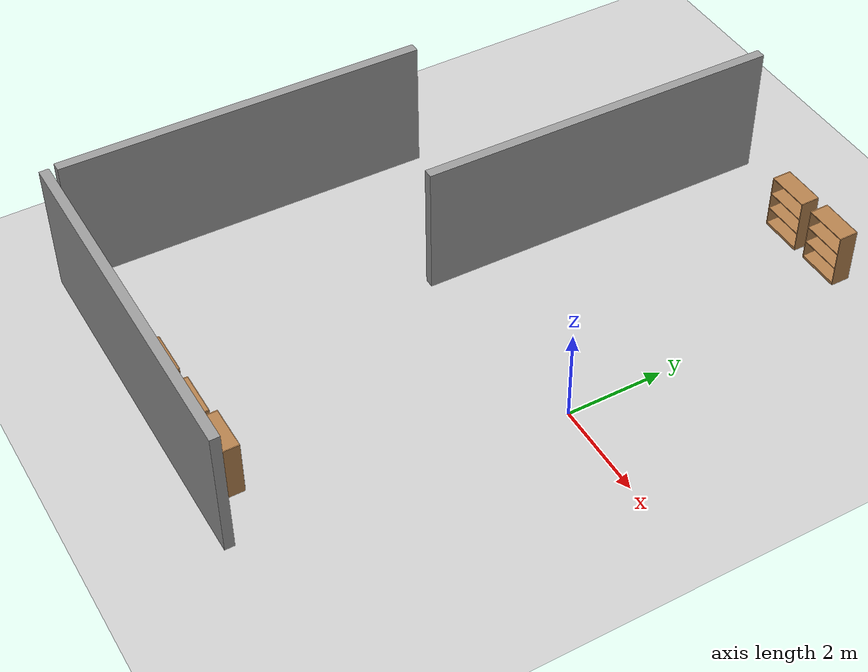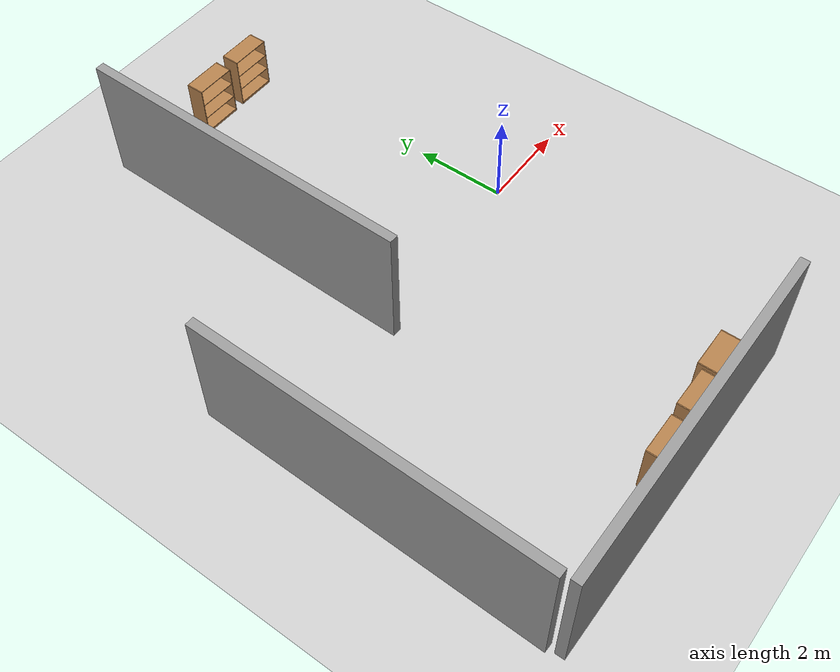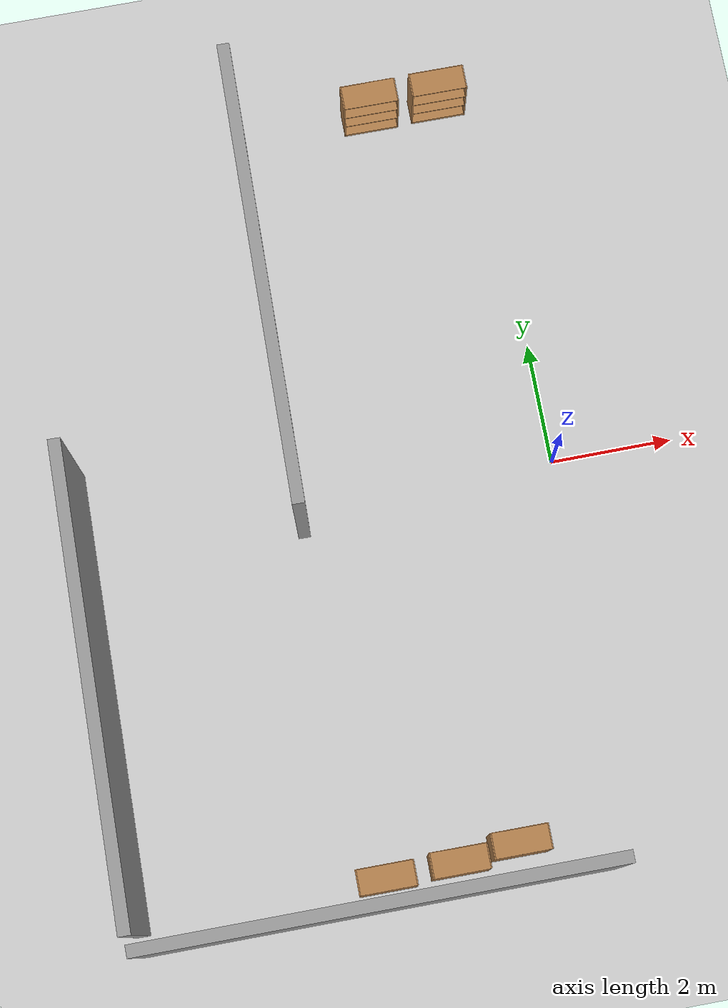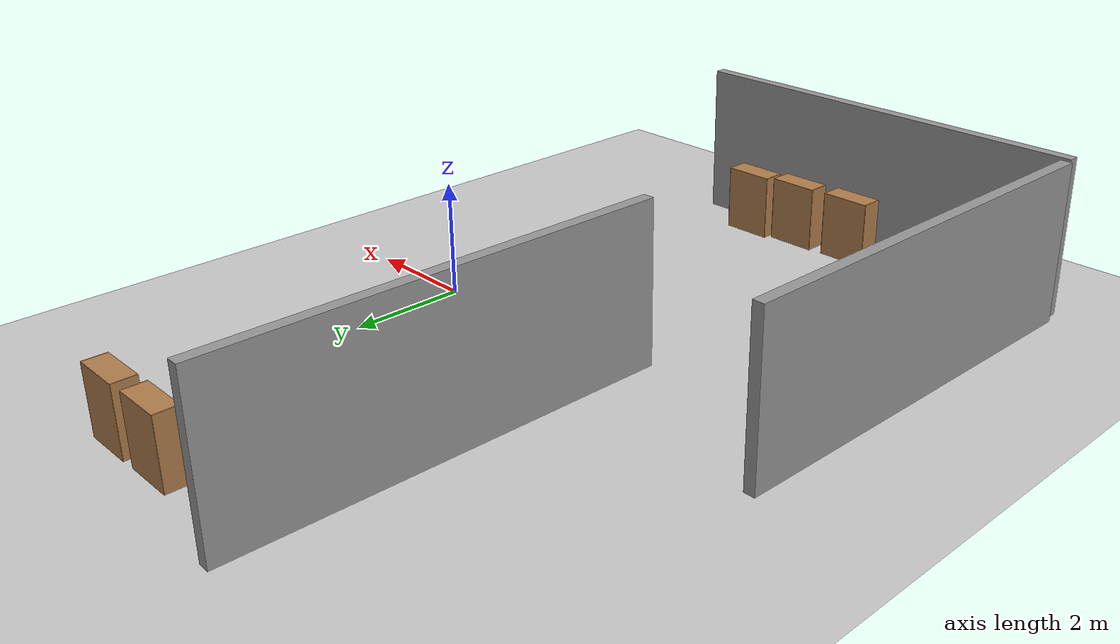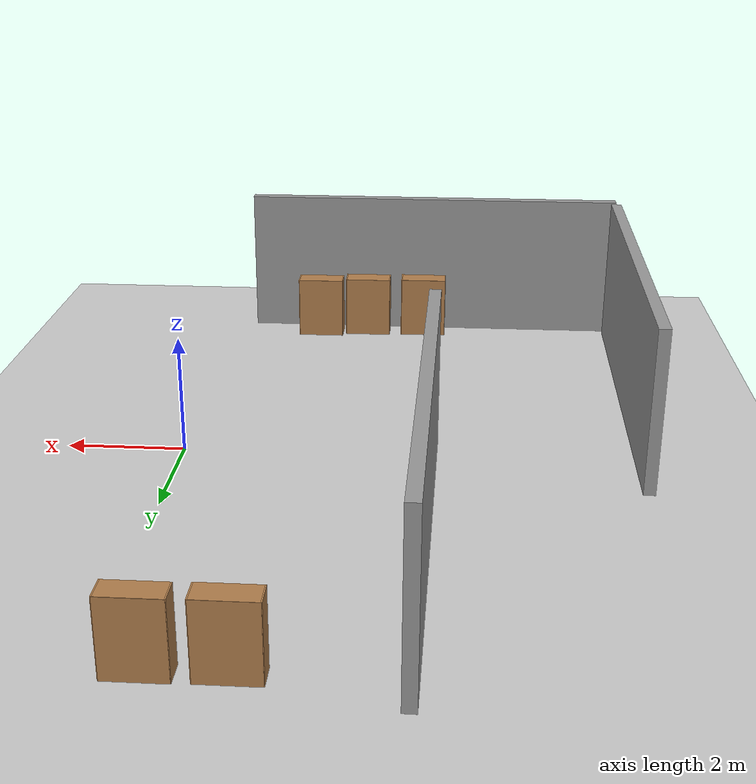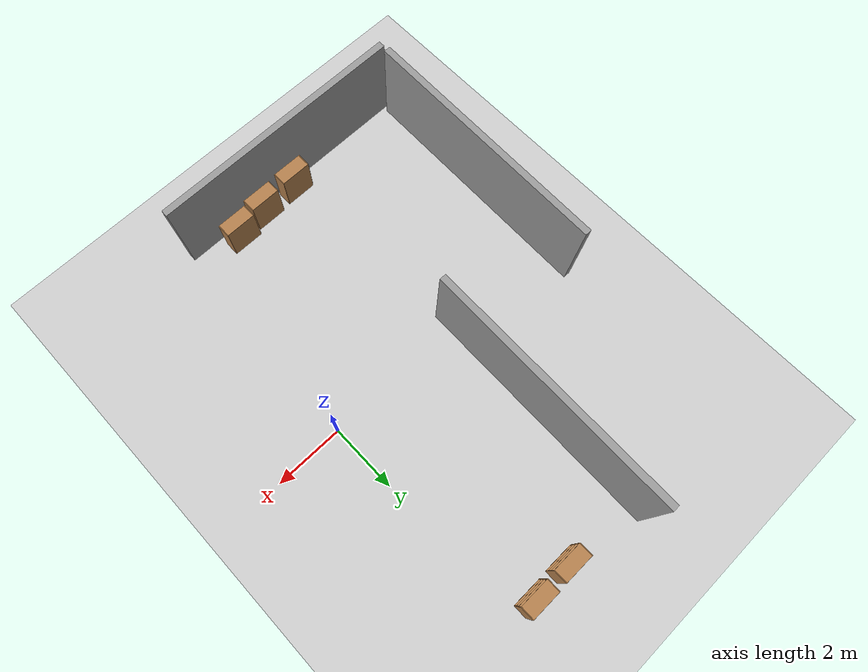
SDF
<sdf version="1.7">
 <world name="default">
  <model name="ground_plane">
   <static>1</static>
   <link name="link">
    <collision name="collision">
     <geometry><plane><normal>0 0 1</normal><size>100 100</size></plane></geometry>
     <surface><friction><ode><mu>100</mu><mu2>50</mu2></ode></friction></surface>
    </collision>
    <visual name="visual">
     <cast_shadows>0</cast_shadows>
     <geometry><plane><normal>0 0 1</normal><size>100 100</size></plane></geometry>
     <material>
      <script><uri>file://media/materials/scripts/gazebo.material</uri><name>Gazebo/Grey</name></script>
     </material>
    </visual>
   </link>
  </model>
  <model name="grey_wall_0">
   <static>1</static>
   <link name="link">
    <pose>0 0 1.4 0 -0 0</pose>
    <collision name="collision"><geometry><box><size>7.5 0.2 2.8</size></box></geometry></collision>
    <visual name="visual">
     <cast_shadows>0</cast_shadows>
     <geometry><box><size>7.5 0.2 2.8</size></box></geometry>
     <material>
      <script>
       <uri>model://grey_wall/materials/scripts</uri>
       <uri>model://grey_wall/materials/textures</uri>
       <name>vrc/grey_wall</name>
      </script>
     </material>
    </visual>
   </link>
   <pose>-4.14677 3.24091 0 0 0 -1.58679</pose>
  </model>
  <model name="grey_wall_1">
   <static>1</static>
   <link name="link">
    <pose>0 0 1.4 0 -0 0</pose>
    <collision name="collision"><geometry><box><size>7.5 0.2 2.8</size></box></geometry></collision>
    <visual name="visual">
     <cast_shadows>0</cast_shadows>
     <geometry><box><size>7.5 0.2 2.8</size></box></geometry>
     <material>
      <script>
       <uri>model://grey_wall/materials/scripts</uri>
       <uri>model://grey_wall/materials/textures</uri>
       <name>vrc/grey_wall</name>
      </script>
     </material>
    </visual>
   </link>
   <pose>-7.74047 -2.58996 0 0 -0 1.55456</pose>
  </model>
  <model name="grey_wall_2">
   <static>1</static>
   <link name="link">
    <pose>0 0 1.4 0 -0 0</pose>
    <collision name="collision"><geometry><box><size>7.5 0.2 2.8</size></box></geometry></collision>
    <visual name="visual">
     <cast_shadows>0</cast_shadows>
     <geometry><box><size>7.5 0.2 2.8</size></box></geometry>
     <material>
      <script>
       <uri>model://grey_wall/materials/scripts</uri>
       <uri>model://grey_wall/materials/textures</uri>
       <name>vrc/grey_wall</name>
      </script>
     </material>
    </visual>
   </link>
   <pose>-4.06497 -6.56277 0 0 -0 0</pose>
  </model>
  <model name="bookshelf">
   <static>1</static>
   <link name="link">
    <inertial><mass>1</mass></inertial>
    <collision name="back">
     <pose>0 0.005 0.6 0 -0 0</pose>
     <geometry><box><size>0.9 0.01 1.2</size></box></geometry>
    </collision>
    <visual name="visual1">
     <pose>0 0.005 0.6 0 -0 0</pose>
     <geometry><box><size>0.9 0.01 1.2</size></box></geometry>
     <material>
      <script><uri>file://media/materials/scripts/gazebo.material</uri><name>Gazebo/Wood</name></script>
     </material>
    </visual>
    <collision name="left_side">
     <pose>0.45 -0.195 0.6 0 -0 0</pose>
     <geometry><box><size>0.02 0.4 1.2</size></box></geometry>
    </collision>
    <visual name="visual2">
     <pose>0.45 -0.195 0.6 0 -0 0</pose>
     <geometry><box><size>0.02 0.4 1.2</size></box></geometry>
     <material>
      <script><uri>file://media/materials/scripts/gazebo.material</uri><name>Gazebo/Wood</name></script>
     </material>
    </visual>
    <collision name="right_side">
     <pose>-0.45 -0.195 0.6 0 -0 0</pose>
     <geometry><box><size>0.02 0.4 1.2</size></box></geometry>
    </collision>
    <visual name="visual3">
     <pose>-0.45 -0.195 0.6 0 -0 0</pose>
     <geometry><box><size>0.02 0.4 1.2</size></box></geometry>
     <material>
      <script><uri>file://media/materials/scripts/gazebo.material</uri><name>Gazebo/Wood</name></script>
     </material>
    </visual>
    <collision name="bottom">
     <pose>0 -0.195 0.03 0 -0 0</pose>
     <geometry><box><size>0.88 0.4 0.06</size></box></geometry>
    </collision>
    <visual name="visual4">
     <pose>0 -0.195 0.03 0 -0 0</pose>
     <geometry><box><size>0.88 0.4 0.06</size></box></geometry>
     <material>
      <script><uri>file://media/materials/scripts/gazebo.material</uri><name>Gazebo/Wood</name></script>
     </material>
    </visual>
    <collision name="top">
     <pose>0 -0.195 1.19 0 -0 0</pose>
     <geometry><box><size>0.88 0.4 0.02</size></box></geometry>
    </collision>
    <visual name="visual5">
     <pose>0 -0.195 1.19 0 -0 0</pose>
     <geometry><box><size>0.88 0.4 0.02</size></box></geometry>
     <material>
      <script><uri>file://media/materials/scripts/gazebo.material</uri><name>Gazebo/Wood</name></script>
     </material>
    </visual>
    <collision name="low_shelf">
     <pose>0 -0.195 0.43 0 -0 0</pose>
     <geometry><box><size>0.88 0.4 0.02</size></box></geometry>
    </collision>
    <visual name="visual6">
     <pose>0 -0.195 0.43 0 -0 0</pose>
     <geometry><box><size>0.88 0.4 0.02</size></box></geometry>
     <material>
      <script><uri>file://media/materials/scripts/gazebo.material</uri><name>Gazebo/Wood</name></script>
     </material>
    </visual>
    <collision name="high_shelf">
     <pose>0 -0.195 0.8 0 -0 0</pose>
     <geometry><box><size>0.88 0.4 0.02</size></box></geometry>
    </collision>
    <visual name="visual7">
     <pose>0 -0.195 0.8 0 -0 0</pose>
     <geometry><box><size>0.88 0.4 0.02</size></box></geometry>
     <material>
      <script><uri>file://media/materials/scripts/gazebo.material</uri><name>Gazebo/Wood</name></script>
     </material>
    </visual>
   </link>
   <pose>-0.709223 6.60823 0 0 -0 0</pose>
  </model>
  <model name="bookshelf_3">
   <static>1</static>
   <link name="link">
    <inertial><mass>1</mass></inertial>
    <collision name="back">
     <pose>0 0.005 0.6 0 -0 0</pose>
     <geometry><box><size>0.9 0.01 1.2</size></box></geometry>
    </collision>
    <visual name="visual1">
     <pose>0 0.005 0.6 0 -0 0</pose>
     <geometry><box><size>0.9 0.01 1.2</size></box></geometry>
     <material>
      <script><uri>file://media/materials/scripts/gazebo.material</uri><name>Gazebo/Wood</name></script>
     </material>
    </visual>
    <collision name="left_side">
     <pose>0.45 -0.195 0.6 0 -0 0</pose>
     <geometry><box><size>0.02 0.4 1.2</size></box></geometry>
    </collision>
    <visual name="visual2">
     <pose>0.45 -0.195 0.6 0 -0 0</pose>
     <geometry><box><size>0.02 0.4 1.2</size></box></geometry>
     <material>
      <script><uri>file://media/materials/scripts/gazebo.material</uri><name>Gazebo/Wood</name></script>
     </material>
    </visual>
    <collision name="right_side">
     <pose>-0.45 -0.195 0.6 0 -0 0</pose>
     <geometry><box><size>0.02 0.4 1.2</size></box></geometry>
    </collision>
    <visual name="visual3">
     <pose>-0.45 -0.195 0.6 0 -0 0</pose>
     <geometry><box><size>0.02 0.4 1.2</size></box></geometry>
     <material>
      <script><uri>file://media/materials/scripts/gazebo.material</uri><name>Gazebo/Wood</name></script>
     </material>
    </visual>
    <collision name="bottom">
     <pose>0 -0.195 0.03 0 -0 0</pose>
     <geometry><box><size>0.88 0.4 0.06</size></box></geometry>
    </collision>
    <visual name="visual4">
     <pose>0 -0.195 0.03 0 -0 0</pose>
     <geometry><box><size>0.88 0.4 0.06</size></box></geometry>
     <material>
      <script><uri>file://media/materials/scripts/gazebo.material</uri><name>Gazebo/Wood</name></script>
     </material>
    </visual>
    <collision name="top">
     <pose>0 -0.195 1.19 0 -0 0</pose>
     <geometry><box><size>0.88 0.4 0.02</size></box></geometry>
    </collision>
    <visual name="visual5">
     <pose>0 -0.195 1.19 0 -0 0</pose>
     <geometry><box><size>0.88 0.4 0.02</size></box></geometry>
     <material>
      <script><uri>file://media/materials/scripts/gazebo.material</uri><name>Gazebo/Wood</name></script>
     </material>
    </visual>
    <collision name="low_shelf">
     <pose>0 -0.195 0.43 0 -0 0</pose>
     <geometry><box><size>0.88 0.4 0.02</size></box></geometry>
    </collision>
    <visual name="visual6">
     <pose>0 -0.195 0.43 0 -0 0</pose>
     <geometry><box><size>0.88 0.4 0.02</size></box></geometry>
     <material>
      <script><uri>file://media/materials/scripts/gazebo.material</uri><name>Gazebo/Wood</name></script>
     </material>
    </visual>
    <collision name="high_shelf">
     <pose>0 -0.195 0.8 0 -0 0</pose>
     <geometry><box><size>0.88 0.4 0.02</size></box></geometry>
    </collision>
    <visual name="visual7">
     <pose>0 -0.195 0.8 0 -0 0</pose>
     <geometry><box><size>0.88 0.4 0.02</size></box></geometry>
     <material>
      <script><uri>file://media/materials/scripts/gazebo.material</uri><name>Gazebo/Wood</name></script>
     </material>
    </visual>
   </link>
   <pose>-2.74927 -5.92509 0 0 -0 0</pose>
  </model>
  <model name="bookshelf_4">
   <static>1</static>
   <link name="link">
    <inertial><mass>1</mass></inertial>
    <collision name="back">
     <pose>0 0.005 0.6 0 -0 0</pose>
     <geometry><box><size>0.9 0.01 1.2</size></box></geometry>
    </collision>
    <visual name="visual1">
     <pose>0 0.005 0.6 0 -0 0</pose>
     <geometry><box><size>0.9 0.01 1.2</size></box></geometry>
     <material>
      <script><uri>file://media/materials/scripts/gazebo.material</uri><name>Gazebo/Wood</name></script>
     </material>
    </visual>
    <collision name="left_side">
     <pose>0.45 -0.195 0.6 0 -0 0</pose>
     <geometry><box><size>0.02 0.4 1.2</size></box></geometry>
    </collision>
    <visual name="visual2">
     <pose>0.45 -0.195 0.6 0 -0 0</pose>
     <geometry><box><size>0.02 0.4 1.2</size></box></geometry>
     <material>
      <script><uri>file://media/materials/scripts/gazebo.material</uri><name>Gazebo/Wood</name></script>
     </material>
    </visual>
    <collision name="right_side">
     <pose>-0.45 -0.195 0.6 0 -0 0</pose>
     <geometry><box><size>0.02 0.4 1.2</size></box></geometry>
    </collision>
    <visual name="visual3">
     <pose>-0.45 -0.195 0.6 0 -0 0</pose>
     <geometry><box><size>0.02 0.4 1.2</size></box></geometry>
     <material>
      <script><uri>file://media/materials/scripts/gazebo.material</uri><name>Gazebo/Wood</name></script>
     </material>
    </visual>
    <collision name="bottom">
     <pose>0 -0.195 0.03 0 -0 0</pose>
     <geometry><box><size>0.88 0.4 0.06</size></box></geometry>
    </collision>
    <visual name="visual4">
     <pose>0 -0.195 0.03 0 -0 0</pose>
     <geometry><box><size>0.88 0.4 0.06</size></box></geometry>
     <material>
      <script><uri>file://media/materials/scripts/gazebo.material</uri><name>Gazebo/Wood</name></script>
     </material>
    </visual>
    <collision name="top">
     <pose>0 -0.195 1.19 0 -0 0</pose>
     <geometry><box><size>0.88 0.4 0.02</size></box></geometry>
    </collision>
    <visual name="visual5">
     <pose>0 -0.195 1.19 0 -0 0</pose>
     <geometry><box><size>0.88 0.4 0.02</size></box></geometry>
     <material>
      <script><uri>file://media/materials/scripts/gazebo.material</uri><name>Gazebo/Wood</name></script>
     </material>
    </visual>
    <collision name="low_shelf">
     <pose>0 -0.195 0.43 0 -0 0</pose>
     <geometry><box><size>0.88 0.4 0.02</size></box></geometry>
    </collision>
    <visual name="visual6">
     <pose>0 -0.195 0.43 0 -0 0</pose>
     <geometry><box><size>0.88 0.4 0.02</size></box></geometry>
     <material>
      <script><uri>file://media/materials/scripts/gazebo.material</uri><name>Gazebo/Wood</name></script>
     </material>
    </visual>
    <collision name="high_shelf">
     <pose>0 -0.195 0.8 0 -0 0</pose>
     <geometry><box><size>0.88 0.4 0.02</size></box></geometry>
    </collision>
    <visual name="visual7">
     <pose>0 -0.195 0.8 0 -0 0</pose>
     <geometry><box><size>0.88 0.4 0.02</size></box></geometry>
     <material>
      <script><uri>file://media/materials/scripts/gazebo.material</uri><name>Gazebo/Wood</name></script>
     </material>
    </visual>
   </link>
   <pose>-1.76889 -5.80329 0 0 -0 0</pose>
  </model>
  <model name="bookshelf_5">
   <static>1</static>
   <link name="link">
    <inertial><mass>1</mass></inertial>
    <collision name="back">
     <pose>0 0.005 0.6 0 -0 0</pose>
     <geometry><box><size>0.9 0.01 1.2</size></box></geometry>
    </collision>
    <visual name="visual1">
     <pose>0 0.005 0.6 0 -0 0</pose>
     <geometry><box><size>0.9 0.01 1.2</size></box></geometry>
     <material>
      <script><uri>file://media/materials/scripts/gazebo.material</uri><name>Gazebo/Wood</name></script>
     </material>
    </visual>
    <collision name="left_side">
     <pose>0.45 -0.195 0.6 0 -0 0</pose>
     <geometry><box><size>0.02 0.4 1.2</size></box></geometry>
    </collision>
    <visual name="visual2">
     <pose>0.45 -0.195 0.6 0 -0 0</pose>
     <geometry><box><size>0.02 0.4 1.2</size></box></geometry>
     <material>
      <script><uri>file://media/materials/scripts/gazebo.material</uri><name>Gazebo/Wood</name></script>
     </material>
    </visual>
    <collision name="right_side">
     <pose>-0.45 -0.195 0.6 0 -0 0</pose>
     <geometry><box><size>0.02 0.4 1.2</size></box></geometry>
    </collision>
    <visual name="visual3">
     <pose>-0.45 -0.195 0.6 0 -0 0</pose>
     <geometry><box><size>0.02 0.4 1.2</size></box></geometry>
     <material>
      <script><uri>file://media/materials/scripts/gazebo.material</uri><name>Gazebo/Wood</name></script>
     </material>
    </visual>
    <collision name="bottom">
     <pose>0 -0.195 0.03 0 -0 0</pose>
     <geometry><box><size>0.88 0.4 0.06</size></box></geometry>
    </collision>
    <visual name="visual4">
     <pose>0 -0.195 0.03 0 -0 0</pose>
     <geometry><box><size>0.88 0.4 0.06</size></box></geometry>
     <material>
      <script><uri>file://media/materials/scripts/gazebo.material</uri><name>Gazebo/Wood</name></script>
     </material>
    </visual>
    <collision name="top">
     <pose>0 -0.195 1.19 0 -0 0</pose>
     <geometry><box><size>0.88 0.4 0.02</size></box></geometry>
    </collision>
    <visual name="visual5">
     <pose>0 -0.195 1.19 0 -0 0</pose>
     <geometry><box><size>0.88 0.4 0.02</size></box></geometry>
     <material>
      <script><uri>file://media/materials/scripts/gazebo.material</uri><name>Gazebo/Wood</name></script>
     </material>
    </visual>
    <collision name="low_shelf">
     <pose>0 -0.195 0.43 0 -0 0</pose>
     <geometry><box><size>0.88 0.4 0.02</size></box></geometry>
    </collision>
    <visual name="visual6">
     <pose>0 -0.195 0.43 0 -0 0</pose>
     <geometry><box><size>0.88 0.4 0.02</size></box></geometry>
     <material>
      <script><uri>file://media/materials/scripts/gazebo.material</uri><name>Gazebo/Wood</name></script>
     </material>
    </visual>
    <collision name="high_shelf">
     <pose>0 -0.195 0.8 0 -0 0</pose>
     <geometry><box><size>0.88 0.4 0.02</size></box></geometry>
    </collision>
    <visual name="visual7">
     <pose>0 -0.195 0.8 0 -0 0</pose>
     <geometry><box><size>0.88 0.4 0.02</size></box></geometry>
     <material>
      <script><uri>file://media/materials/scripts/gazebo.material</uri><name>Gazebo/Wood</name></script>
     </material>
    </visual>
   </link>
   <pose>-1.85946 6.58991 0 0 -0 0</pose>
  </model>
  <model name="bookshelf_6">
   <static>1</static>
   <link name="link">
    <inertial><mass>1</mass></inertial>
    <collision name="back">
     <pose>0 0.005 0.6 0 -0 0</pose>
     <geometry><box><size>0.9 0.01 1.2</size></box></geometry>
    </collision>
    <visual name="visual1">
     <pose>0 0.005 0.6 0 -0 0</pose>
     <geometry><box><size>0.9 0.01 1.2</size></box></geometry>
     <material>
      <script><uri>file://media/materials/scripts/gazebo.material</uri><name>Gazebo/Wood</name></script>
     </material>
    </visual>
    <collision name="left_side">
     <pose>0.45 -0.195 0.6 0 -0 0</pose>
     <geometry><box><size>0.02 0.4 1.2</size></box></geometry>
    </collision>
    <visual name="visual2">
     <pose>0.45 -0.195 0.6 0 -0 0</pose>
     <geometry><box><size>0.02 0.4 1.2</size></box></geometry>
     <material>
      <script><uri>file://media/materials/scripts/gazebo.material</uri><name>Gazebo/Wood</name></script>
     </material>
    </visual>
    <collision name="right_side">
     <pose>-0.45 -0.195 0.6 0 -0 0</pose>
     <geometry><box><size>0.02 0.4 1.2</size></box></geometry>
    </collision>
    <visual name="visual3">
     <pose>-0.45 -0.195 0.6 0 -0 0</pose>
     <geometry><box><size>0.02 0.4 1.2</size></box></geometry>
     <material>
      <script><uri>file://media/materials/scripts/gazebo.material</uri><name>Gazebo/Wood</name></script>
     </material>
    </visual>
    <collision name="bottom">
     <pose>0 -0.195 0.03 0 -0 0</pose>
     <geometry><box><size>0.88 0.4 0.06</size></box></geometry>
    </collision>
    <visual name="visual4">
     <pose>0 -0.195 0.03 0 -0 0</pose>
     <geometry><box><size>0.88 0.4 0.06</size></box></geometry>
     <material>
      <script><uri>file://media/materials/scripts/gazebo.material</uri><name>Gazebo/Wood</name></script>
     </material>
    </visual>
    <collision name="top">
     <pose>0 -0.195 1.19 0 -0 0</pose>
     <geometry><box><size>0.88 0.4 0.02</size></box></geometry>
    </collision>
    <visual name="visual5">
     <pose>0 -0.195 1.19 0 -0 0</pose>
     <geometry><box><size>0.88 0.4 0.02</size></box></geometry>
     <material>
      <script><uri>file://media/materials/scripts/gazebo.material</uri><name>Gazebo/Wood</name></script>
     </material>
    </visual>
    <collision name="low_shelf">
     <pose>0 -0.195 0.43 0 -0 0</pose>
     <geometry><box><size>0.88 0.4 0.02</size></box></geometry>
    </collision>
    <visual name="visual6">
     <pose>0 -0.195 0.43 0 -0 0</pose>
     <geometry><box><size>0.88 0.4 0.02</size></box></geometry>
     <material>
      <script><uri>file://media/materials/scripts/gazebo.material</uri><name>Gazebo/Wood</name></script>
     </material>
    </visual>
    <collision name="high_shelf">
     <pose>0 -0.195 0.8 0 -0 0</pose>
     <geometry><box><size>0.88 0.4 0.02</size></box></geometry>
    </collision>
    <visual name="visual7">
     <pose>0 -0.195 0.8 0 -0 0</pose>
     <geometry><box><size>0.88 0.4 0.02</size></box></geometry>
     <material>
      <script><uri>file://media/materials/scripts/gazebo.material</uri><name>Gazebo/Wood</name></script>
     </material>
    </visual>
   </link>
   <pose>-3.90426 -5.96744 0 0 -0 0</pose>
  </model>
 </world>
</sdf>
